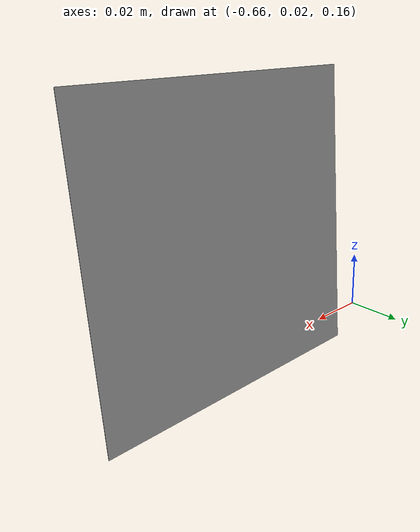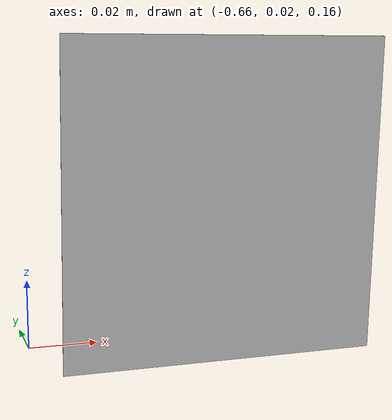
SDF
<?xml version="1.0" ?>
<sdf version="1.6">
  <model name="aruco_tag_3">
    <static>true</static>
    <link name="link">
      <collision name="collision">
        <geometry>
          <plane>
            <size>0.10 0.10</size>
          </plane>
        </geometry>
      </collision>
      <visual name="visual">
        <pose>-0.6 0.018 0.2 1.5078 0 3.14159</pose> <!-- Raise the tag above ground -->
        <cast_shadows>false</cast_shadows>
        <geometry>
          <plane>
            <size>0.10 0.10</size> <!-- 10cm x 10cm tag -->
          </plane>
        </geometry>
        <material>
          <script>
            <uri>model://aruco_tag_3/scripts</uri>
            <uri>model://aruco_tag_3/texture</uri>
            <name>6x6_1000-19</name>
          </script>
        </material>
      </visual>
    </link>
  </model>
</sdf>
